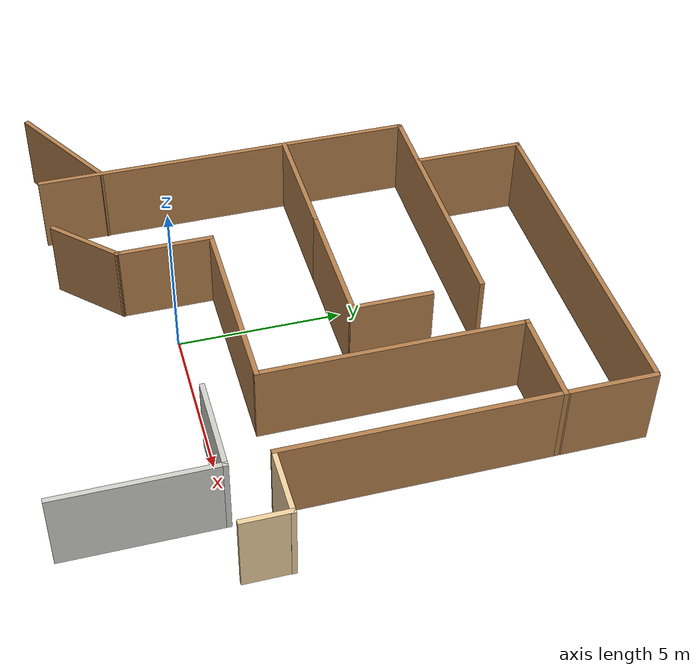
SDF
<sdf version="1.6">
 <model name="myHouse">
  <link name="Wall_10">
   <pose>-5.63978 0.790812 0 0 -0 1.5708</pose>
   <visual name="Wall_10_Visual">
    <pose>0 0 1.25 0 -0 0</pose>
    <geometry><box><size>8.02625 0.15 2.5</size></box></geometry>
    <material>
     <script><uri>file://media/materials/scripts/gazebo.material</uri><name>Gazebo/Wood</name></script>
     <ambient>1 1 1 1</ambient>
     <diffuse>1 1 1 1</diffuse>
     <specular>0.2 0.2 0.2 1</specular>
     <emissive>0 0 0 1</emissive>
    </material>
    <meta><layer>0</layer></meta>
   </visual>
   <collision name="Wall_10_Collision">
    <pose>0 0 1.25 0 -0 0</pose>
    <geometry><box><size>8.02625 0.15 2.5</size></box></geometry>
    <surface>
     <friction>
      <ode><mu>1</mu><mu2>1</mu2><fdir1>0 0 0</fdir1><slip1>0</slip1><slip2>0</slip2></ode>
      <torsional>
       <coefficient>1</coefficient>
       <patch_radius>0</patch_radius>
       <surface_radius>0</surface_radius>
       <use_patch_radius>1</use_patch_radius>
       <ode><slip>0</slip></ode>
      </torsional>
     </friction>
     <bounce><restitution_coefficient>0</restitution_coefficient><threshold>1e+06</threshold></bounce>
     <contact>
      <collide_without_contact>0</collide_without_contact>
      <collide_without_contact_bitmask>1</collide_without_contact_bitmask>
      <collide_bitmask>1</collide_bitmask>
      <ode>
       <soft_cfm>0</soft_cfm>
       <soft_erp>0.2</soft_erp>
       <kp>1e+13</kp>
       <kd>1</kd>
       <max_vel>0.01</max_vel>
       <min_depth>0</min_depth>
      </ode>
      <bullet>
       <split_impulse>1</split_impulse>
       <split_impulse_penetration_threshold>-0.01</split_impulse_penetration_threshold>
       <soft_cfm>0</soft_cfm>
       <soft_erp>0.2</soft_erp>
       <kp>1e+13</kp>
       <kd>1</kd>
      </bullet>
     </contact>
    </surface>
   </collision>
  </link>
  <link name="Wall_19">
   <pose>-7.29505 -2.18861 0 0 -0 0.523599</pose>
   <visual name="Wall_19_Visual">
    <pose>0 0 1.25 0 -0 0</pose>
    <geometry><box><size>4 0.15 2.5</size></box></geometry>
    <material>
     <script><uri>file://media/materials/scripts/gazebo.material</uri><name>Gazebo/Wood</name></script>
     <ambient>1 1 1 1</ambient>
     <diffuse>1 1 1 1</diffuse>
     <specular>0.2 0.2 0.2 1</specular>
     <emissive>0 0 0 1</emissive>
    </material>
    <meta><layer>0</layer></meta>
   </visual>
   <collision name="Wall_19_Collision">
    <pose>0 0 1.25 0 -0 0</pose>
    <geometry><box><size>4 0.15 2.5</size></box></geometry>
    <surface>
     <friction>
      <ode><mu>1</mu><mu2>1</mu2><fdir1>0 0 0</fdir1><slip1>0</slip1><slip2>0</slip2></ode>
      <torsional>
       <coefficient>1</coefficient>
       <patch_radius>0</patch_radius>
       <surface_radius>0</surface_radius>
       <use_patch_radius>1</use_patch_radius>
       <ode><slip>0</slip></ode>
      </torsional>
     </friction>
     <bounce><restitution_coefficient>0</restitution_coefficient><threshold>1e+06</threshold></bounce>
     <contact>
      <collide_without_contact>0</collide_without_contact>
      <collide_without_contact_bitmask>1</collide_without_contact_bitmask>
      <collide_bitmask>1</collide_bitmask>
      <ode>
       <soft_cfm>0</soft_cfm>
       <soft_erp>0.2</soft_erp>
       <kp>1e+13</kp>
       <kd>1</kd>
       <max_vel>0.01</max_vel>
       <min_depth>0</min_depth>
      </ode>
      <bullet>
       <split_impulse>1</split_impulse>
       <split_impulse_penetration_threshold>-0.01</split_impulse_penetration_threshold>
       <soft_cfm>0</soft_cfm>
       <soft_erp>0.2</soft_erp>
       <kp>1e+13</kp>
       <kd>1</kd>
      </bullet>
     </contact>
    </surface>
   </collision>
  </link>
  <link name="Wall_22">
   <pose>5.64675 -0.032335 0 0 -0 3.14159</pose>
   <visual name="Wall_22_Visual">
    <pose>0 0 1.25 0 -0 0</pose>
    <geometry><box><size>3 0.15 2.5</size></box></geometry>
    <material>
     <script><uri>file://media/materials/scripts/gazebo.material</uri><name>Gazebo/CeilingTiled</name></script>
     <ambient>0.921569 0.807843 0.615686 1</ambient>
     <diffuse>1 1 1 1</diffuse>
     <specular>0 0 0 1</specular>
     <emissive>0 0 0 1</emissive>
    </material>
    <meta><layer>0</layer></meta>
   </visual>
   <collision name="Wall_22_Collision">
    <pose>0 0 1.25 0 -0 0</pose>
    <geometry><box><size>3 0.15 2.5</size></box></geometry>
    <surface>
     <friction>
      <ode><mu>1</mu><mu2>1</mu2><fdir1>0 0 0</fdir1><slip1>0</slip1><slip2>0</slip2></ode>
      <torsional>
       <coefficient>1</coefficient>
       <patch_radius>0</patch_radius>
       <surface_radius>0</surface_radius>
       <use_patch_radius>1</use_patch_radius>
       <ode><slip>0</slip></ode>
      </torsional>
     </friction>
     <bounce><restitution_coefficient>0</restitution_coefficient><threshold>1e+06</threshold></bounce>
     <contact>
      <collide_without_contact>0</collide_without_contact>
      <collide_without_contact_bitmask>1</collide_without_contact_bitmask>
      <collide_bitmask>1</collide_bitmask>
      <ode>
       <soft_cfm>0</soft_cfm>
       <soft_erp>0.2</soft_erp>
       <kp>1e+13</kp>
       <kd>1</kd>
       <max_vel>0.01</max_vel>
       <min_depth>0</min_depth>
      </ode>
      <bullet>
       <split_impulse>1</split_impulse>
       <split_impulse_penetration_threshold>-0.01</split_impulse_penetration_threshold>
       <soft_cfm>0</soft_cfm>
       <soft_erp>0.2</soft_erp>
       <kp>1e+13</kp>
       <kd>1</kd>
      </bullet>
     </contact>
    </surface>
   </collision>
  </link>
  <link name="Wall_26">
   <pose>-2.5474 -2.20148 0 0 -0 0.785398</pose>
   <visual name="Wall_26_Visual">
    <pose>0 0 1.25 0 -0 0</pose>
    <geometry><box><size>2.5 0.15 2.5</size></box></geometry>
    <material>
     <script><uri>file://media/materials/scripts/gazebo.material</uri><name>Gazebo/Wood</name></script>
     <ambient>1 1 1 1</ambient>
     <diffuse>1 1 1 1</diffuse>
     <specular>0.2 0.2 0.2 1</specular>
     <emissive>0 0 0 1</emissive>
    </material>
    <meta><layer>0</layer></meta>
   </visual>
   <collision name="Wall_26_Collision">
    <pose>0 0 1.25 0 -0 0</pose>
    <geometry><box><size>2.5 0.15 2.5</size></box></geometry>
    <surface>
     <friction>
      <ode><mu>1</mu><mu2>1</mu2><fdir1>0 0 0</fdir1><slip1>0</slip1><slip2>0</slip2></ode>
      <torsional>
       <coefficient>1</coefficient>
       <patch_radius>0</patch_radius>
       <surface_radius>0</surface_radius>
       <use_patch_radius>1</use_patch_radius>
       <ode><slip>0</slip></ode>
      </torsional>
     </friction>
     <bounce><restitution_coefficient>0</restitution_coefficient><threshold>1e+06</threshold></bounce>
     <contact>
      <collide_without_contact>0</collide_without_contact>
      <collide_without_contact_bitmask>1</collide_without_contact_bitmask>
      <collide_bitmask>1</collide_bitmask>
      <ode>
       <soft_cfm>0</soft_cfm>
       <soft_erp>0.2</soft_erp>
       <kp>1e+13</kp>
       <kd>1</kd>
       <max_vel>0.01</max_vel>
       <min_depth>0</min_depth>
      </ode>
      <bullet>
       <split_impulse>1</split_impulse>
       <split_impulse_penetration_threshold>-0.01</split_impulse_penetration_threshold>
       <soft_cfm>0</soft_cfm>
       <soft_erp>0.2</soft_erp>
       <kp>1e+13</kp>
       <kd>1</kd>
      </bullet>
     </contact>
    </surface>
   </collision>
  </link>
  <link name="Wall_27">
   <pose>-1.71655 0.054366 0 0 -0 1.5708</pose>
   <visual name="Wall_27_Visual">
    <pose>0 0 1.25 0 -0 0</pose>
    <geometry><box><size>3 0.15 2.5</size></box></geometry>
    <material>
     <script><uri>file://media/materials/scripts/gazebo.material</uri><name>Gazebo/Wood</name></script>
     <ambient>1 1 1 1</ambient>
     <diffuse>1 1 1 1</diffuse>
     <specular>0.2 0.2 0.2 1</specular>
     <emissive>0 0 0 1</emissive>
    </material>
    <meta><layer>0</layer></meta>
   </visual>
   <collision name="Wall_27_Collision">
    <pose>0 0 1.25 0 -0 0</pose>
    <geometry><box><size>3 0.15 2.5</size></box></geometry>
    <surface>
     <friction>
      <ode><mu>1</mu><mu2>1</mu2><fdir1>0 0 0</fdir1><slip1>0</slip1><slip2>0</slip2></ode>
      <torsional>
       <coefficient>1</coefficient>
       <patch_radius>0</patch_radius>
       <surface_radius>0</surface_radius>
       <use_patch_radius>1</use_patch_radius>
       <ode><slip>0</slip></ode>
      </torsional>
     </friction>
     <bounce><restitution_coefficient>0</restitution_coefficient><threshold>1e+06</threshold></bounce>
     <contact>
      <collide_without_contact>0</collide_without_contact>
      <collide_without_contact_bitmask>1</collide_without_contact_bitmask>
      <collide_bitmask>1</collide_bitmask>
      <ode>
       <soft_cfm>0</soft_cfm>
       <soft_erp>0.2</soft_erp>
       <kp>1e+13</kp>
       <kd>1</kd>
       <max_vel>0.01</max_vel>
       <min_depth>0</min_depth>
      </ode>
      <bullet>
       <split_impulse>1</split_impulse>
       <split_impulse_penetration_threshold>-0.01</split_impulse_penetration_threshold>
       <soft_cfm>0</soft_cfm>
       <soft_erp>0.2</soft_erp>
       <kp>1e+13</kp>
       <kd>1</kd>
      </bullet>
     </contact>
    </surface>
   </collision>
  </link>
  <link name="Wall_28">
   <pose>1.20845 1.47937 0 0 -0 0</pose>
   <visual name="Wall_28_Visual">
    <pose>0 0 1.25 0 -0 0</pose>
    <geometry><box><size>6 0.15 2.5</size></box></geometry>
    <material>
     <script><uri>file://media/materials/scripts/gazebo.material</uri><name>Gazebo/Wood</name></script>
     <ambient>1 1 1 1</ambient>
     <diffuse>1 1 1 1</diffuse>
     <specular>0.2 0.2 0.2 1</specular>
     <emissive>0 0 0 1</emissive>
    </material>
    <meta><layer>0</layer></meta>
   </visual>
   <collision name="Wall_28_Collision">
    <pose>0 0 1.25 0 -0 0</pose>
    <geometry><box><size>6 0.15 2.5</size></box></geometry>
    <surface>
     <friction>
      <ode><mu>1</mu><mu2>1</mu2><fdir1>0 0 0</fdir1><slip1>0</slip1><slip2>0</slip2></ode>
      <torsional>
       <coefficient>1</coefficient>
       <patch_radius>0</patch_radius>
       <surface_radius>0</surface_radius>
       <use_patch_radius>1</use_patch_radius>
       <ode><slip>0</slip></ode>
      </torsional>
     </friction>
     <bounce><restitution_coefficient>0</restitution_coefficient><threshold>1e+06</threshold></bounce>
     <contact>
      <collide_without_contact>0</collide_without_contact>
      <collide_without_contact_bitmask>1</collide_without_contact_bitmask>
      <collide_bitmask>1</collide_bitmask>
      <ode>
       <soft_cfm>0</soft_cfm>
       <soft_erp>0.2</soft_erp>
       <kp>1e+13</kp>
       <kd>1</kd>
       <max_vel>0.01</max_vel>
       <min_depth>0</min_depth>
      </ode>
      <bullet>
       <split_impulse>1</split_impulse>
       <split_impulse_penetration_threshold>-0.01</split_impulse_penetration_threshold>
       <soft_cfm>0</soft_cfm>
       <soft_erp>0.2</soft_erp>
       <kp>1e+13</kp>
       <kd>1</kd>
      </bullet>
     </contact>
    </surface>
   </collision>
  </link>
  <link name="Wall_29">
   <pose>4.13345 5.40437 0 0 -0 1.5708</pose>
   <visual name="Wall_29_Visual">
    <pose>0 0 1.25 0 -0 0</pose>
    <geometry><box><size>8 0.15 2.5</size></box></geometry>
    <material>
     <script><uri>file://media/materials/scripts/gazebo.material</uri><name>Gazebo/Wood</name></script>
     <ambient>1 1 1 1</ambient>
     <diffuse>1 1 1 1</diffuse>
     <specular>0.2 0.2 0.2 1</specular>
     <emissive>0 0 0 1</emissive>
    </material>
    <meta><layer>0</layer></meta>
   </visual>
   <collision name="Wall_29_Collision">
    <pose>0 0 1.25 0 -0 0</pose>
    <geometry><box><size>8 0.15 2.5</size></box></geometry>
    <surface>
     <friction>
      <ode><mu>1</mu><mu2>1</mu2><fdir1>0 0 0</fdir1><slip1>0</slip1><slip2>0</slip2></ode>
      <torsional>
       <coefficient>1</coefficient>
       <patch_radius>0</patch_radius>
       <surface_radius>0</surface_radius>
       <use_patch_radius>1</use_patch_radius>
       <ode><slip>0</slip></ode>
      </torsional>
     </friction>
     <bounce><restitution_coefficient>0</restitution_coefficient><threshold>1e+06</threshold></bounce>
     <contact>
      <collide_without_contact>0</collide_without_contact>
      <collide_without_contact_bitmask>1</collide_without_contact_bitmask>
      <collide_bitmask>1</collide_bitmask>
      <ode>
       <soft_cfm>0</soft_cfm>
       <soft_erp>0.2</soft_erp>
       <kp>1e+13</kp>
       <kd>1</kd>
       <max_vel>0.01</max_vel>
       <min_depth>0</min_depth>
      </ode>
      <bullet>
       <split_impulse>1</split_impulse>
       <split_impulse_penetration_threshold>-0.01</split_impulse_penetration_threshold>
       <soft_cfm>0</soft_cfm>
       <soft_erp>0.2</soft_erp>
       <kp>1e+13</kp>
       <kd>1</kd>
      </bullet>
     </contact>
    </surface>
   </collision>
  </link>
  <link name="Wall_30">
   <pose>5.55565 9.3284 0 0 0 -0.000679</pose>
   <visual name="Wall_30_Visual">
    <pose>0 0 1.25 0 -0 0</pose>
    <geometry><box><size>2.99474 0.15 2.5</size></box></geometry>
    <material>
     <script><uri>file://media/materials/scripts/gazebo.material</uri><name>Gazebo/Wood</name></script>
     <ambient>1 1 1 1</ambient>
     <diffuse>1 1 1 1</diffuse>
     <specular>0.2 0.2 0.2 1</specular>
     <emissive>0 0 0 1</emissive>
    </material>
    <meta><layer>0</layer></meta>
   </visual>
   <collision name="Wall_30_Collision">
    <pose>0 0 1.25 0 -0 0</pose>
    <geometry><box><size>2.99474 0.15 2.5</size></box></geometry>
    <surface>
     <friction>
      <ode><mu>1</mu><mu2>1</mu2><fdir1>0 0 0</fdir1><slip1>0</slip1><slip2>0</slip2></ode>
      <torsional>
       <coefficient>1</coefficient>
       <patch_radius>0</patch_radius>
       <surface_radius>0</surface_radius>
       <use_patch_radius>1</use_patch_radius>
       <ode><slip>0</slip></ode>
      </torsional>
     </friction>
     <bounce><restitution_coefficient>0</restitution_coefficient><threshold>1e+06</threshold></bounce>
     <contact>
      <collide_without_contact>0</collide_without_contact>
      <collide_without_contact_bitmask>1</collide_without_contact_bitmask>
      <collide_bitmask>1</collide_bitmask>
      <ode>
       <soft_cfm>0</soft_cfm>
       <soft_erp>0.2</soft_erp>
       <kp>1e+13</kp>
       <kd>1</kd>
       <max_vel>0.01</max_vel>
       <min_depth>0</min_depth>
      </ode>
      <bullet>
       <split_impulse>1</split_impulse>
       <split_impulse_penetration_threshold>-0.01</split_impulse_penetration_threshold>
       <soft_cfm>0</soft_cfm>
       <soft_erp>0.2</soft_erp>
       <kp>1e+13</kp>
       <kd>1</kd>
      </bullet>
     </contact>
    </surface>
   </collision>
  </link>
  <link name="Wall_31">
   <pose>6.97785 5.3228 0 0 0 -1.5708</pose>
   <visual name="Wall_31_Visual">
    <pose>0 0 1.25 0 -0 0</pose>
    <geometry><box><size>8.25 0.15 2.5</size></box></geometry>
    <material>
     <script><uri>file://media/materials/scripts/gazebo.material</uri><name>Gazebo/Wood</name></script>
     <ambient>1 1 1 1</ambient>
     <diffuse>1 1 1 1</diffuse>
     <specular>0.2 0.2 0.2 1</specular>
     <emissive>0 0 0 1</emissive>
    </material>
    <meta><layer>0</layer></meta>
   </visual>
   <collision name="Wall_31_Collision">
    <pose>0 0 1.25 0 -0 0</pose>
    <geometry><box><size>8.25 0.15 2.5</size></box></geometry>
    <surface>
     <friction>
      <ode><mu>1</mu><mu2>1</mu2><fdir1>0 0 0</fdir1><slip1>0</slip1><slip2>0</slip2></ode>
      <torsional>
       <coefficient>1</coefficient>
       <patch_radius>0</patch_radius>
       <surface_radius>0</surface_radius>
       <use_patch_radius>1</use_patch_radius>
       <ode><slip>0</slip></ode>
      </torsional>
     </friction>
     <bounce><restitution_coefficient>0</restitution_coefficient><threshold>1e+06</threshold></bounce>
     <contact>
      <collide_without_contact>0</collide_without_contact>
      <collide_without_contact_bitmask>1</collide_without_contact_bitmask>
      <collide_bitmask>1</collide_bitmask>
      <ode>
       <soft_cfm>0</soft_cfm>
       <soft_erp>0.2</soft_erp>
       <kp>1e+13</kp>
       <kd>1</kd>
       <max_vel>0.01</max_vel>
       <min_depth>0</min_depth>
      </ode>
      <bullet>
       <split_impulse>1</split_impulse>
       <split_impulse_penetration_threshold>-0.01</split_impulse_penetration_threshold>
       <soft_cfm>0</soft_cfm>
       <soft_erp>0.2</soft_erp>
       <kp>1e+13</kp>
       <kd>1</kd>
      </bullet>
     </contact>
    </surface>
   </collision>
  </link>
  <link name="Wall_37">
   <pose>-3.71478 4.72896 0 0 -0 0.000116</pose>
   <visual name="Wall_37_Visual">
    <pose>0 0 1.25 0 -0 0</pose>
    <geometry><box><size>4 0.15 2.5</size></box></geometry>
    <material>
     <script><uri>file://media/materials/scripts/gazebo.material</uri><name>Gazebo/Wood</name></script>
     <ambient>1 1 1 1</ambient>
     <diffuse>1 1 1 1</diffuse>
     <specular>0.2 0.2 0.2 1</specular>
     <emissive>0 0 0 1</emissive>
    </material>
    <meta><layer>0</layer></meta>
   </visual>
   <collision name="Wall_37_Collision">
    <pose>0 0 1.25 0 -0 0</pose>
    <geometry><box><size>4 0.15 2.5</size></box></geometry>
    <surface>
     <friction>
      <ode><mu>1</mu><mu2>1</mu2><fdir1>0 0 0</fdir1><slip1>0</slip1><slip2>0</slip2></ode>
      <torsional>
       <coefficient>1</coefficient>
       <patch_radius>0</patch_radius>
       <surface_radius>0</surface_radius>
       <use_patch_radius>1</use_patch_radius>
       <ode><slip>0</slip></ode>
      </torsional>
     </friction>
     <bounce><restitution_coefficient>0</restitution_coefficient><threshold>1e+06</threshold></bounce>
     <contact>
      <collide_without_contact>0</collide_without_contact>
      <collide_without_contact_bitmask>1</collide_without_contact_bitmask>
      <collide_bitmask>1</collide_bitmask>
      <ode>
       <soft_cfm>0</soft_cfm>
       <soft_erp>0.2</soft_erp>
       <kp>1e+13</kp>
       <kd>1</kd>
       <max_vel>0.01</max_vel>
       <min_depth>0</min_depth>
      </ode>
      <bullet>
       <split_impulse>1</split_impulse>
       <split_impulse_penetration_threshold>-0.01</split_impulse_penetration_threshold>
       <soft_cfm>0</soft_cfm>
       <soft_erp>0.2</soft_erp>
       <kp>1e+13</kp>
       <kd>1</kd>
      </bullet>
     </contact>
    </surface>
   </collision>
  </link>
  <link name="Wall_38">
   <pose>0.260223 4.72919 0 0 -0 0</pose>
   <visual name="Wall_38_Visual">
    <pose>0 0 1.25 0 -0 0</pose>
    <geometry><box><size>4.25 0.15 2.5</size></box></geometry>
    <material>
     <script><uri>file://media/materials/scripts/gazebo.material</uri><name>Gazebo/Wood</name></script>
     <ambient>1 1 1 1</ambient>
     <diffuse>1 1 1 1</diffuse>
     <specular>0.2 0.2 0.2 1</specular>
     <emissive>0 0 0 1</emissive>
    </material>
    <meta><layer>0</layer></meta>
   </visual>
   <collision name="Wall_38_Collision">
    <pose>0 0 1.25 0 -0 0</pose>
    <geometry><box><size>4.25 0.15 2.5</size></box></geometry>
    <surface>
     <friction>
      <ode><mu>1</mu><mu2>1</mu2><fdir1>0 0 0</fdir1><slip1>0</slip1><slip2>0</slip2></ode>
      <torsional>
       <coefficient>1</coefficient>
       <patch_radius>0</patch_radius>
       <surface_radius>0</surface_radius>
       <use_patch_radius>1</use_patch_radius>
       <ode><slip>0</slip></ode>
      </torsional>
     </friction>
     <bounce><restitution_coefficient>0</restitution_coefficient><threshold>1e+06</threshold></bounce>
     <contact>
      <collide_without_contact>0</collide_without_contact>
      <collide_without_contact_bitmask>1</collide_without_contact_bitmask>
      <collide_bitmask>1</collide_bitmask>
      <ode>
       <soft_cfm>0</soft_cfm>
       <soft_erp>0.2</soft_erp>
       <kp>1e+13</kp>
       <kd>1</kd>
       <max_vel>0.01</max_vel>
       <min_depth>0</min_depth>
      </ode>
      <bullet>
       <split_impulse>1</split_impulse>
       <split_impulse_penetration_threshold>-0.01</split_impulse_penetration_threshold>
       <soft_cfm>0</soft_cfm>
       <soft_erp>0.2</soft_erp>
       <kp>1e+13</kp>
       <kd>1</kd>
      </bullet>
     </contact>
    </surface>
   </collision>
  </link>
  <link name="Wall_39">
   <pose>2.31022 5.90419 0 0 -0 1.5708</pose>
   <visual name="Wall_39_Visual">
    <pose>0 0 1.25 0 -0 0</pose>
    <geometry><box><size>2.5 0.15 2.5</size></box></geometry>
    <material>
     <script><uri>file://media/materials/scripts/gazebo.material</uri><name>Gazebo/Wood</name></script>
     <ambient>1 1 1 1</ambient>
     <diffuse>1 1 1 1</diffuse>
     <specular>0.2 0.2 0.2 1</specular>
     <emissive>0 0 0 1</emissive>
    </material>
    <meta><layer>0</layer></meta>
   </visual>
   <collision name="Wall_39_Collision">
    <pose>0 0 1.25 0 -0 0</pose>
    <geometry><box><size>2.5 0.15 2.5</size></box></geometry>
    <surface>
     <friction>
      <ode><mu>1</mu><mu2>1</mu2><fdir1>0 0 0</fdir1><slip1>0</slip1><slip2>0</slip2></ode>
      <torsional>
       <coefficient>1</coefficient>
       <patch_radius>0</patch_radius>
       <surface_radius>0</surface_radius>
       <use_patch_radius>1</use_patch_radius>
       <ode><slip>0</slip></ode>
      </torsional>
     </friction>
     <bounce><restitution_coefficient>0</restitution_coefficient><threshold>1e+06</threshold></bounce>
     <contact>
      <collide_without_contact>0</collide_without_contact>
      <collide_without_contact_bitmask>1</collide_without_contact_bitmask>
      <collide_bitmask>1</collide_bitmask>
      <ode>
       <soft_cfm>0</soft_cfm>
       <soft_erp>0.2</soft_erp>
       <kp>1e+13</kp>
       <kd>1</kd>
       <max_vel>0.01</max_vel>
       <min_depth>0</min_depth>
      </ode>
      <bullet>
       <split_impulse>1</split_impulse>
       <split_impulse_penetration_threshold>-0.01</split_impulse_penetration_threshold>
       <soft_cfm>0</soft_cfm>
       <soft_erp>0.2</soft_erp>
       <kp>1e+13</kp>
       <kd>1</kd>
      </bullet>
     </contact>
    </surface>
   </collision>
  </link>
  <link name="Wall_4">
   <pose>7.07175 -2.33234 0 0 -0 1.5708</pose>
   <visual name="Wall_4_Visual">
    <pose>0 0 1.25 0 -0 0</pose>
    <geometry><box><size>4.75 0.15 2.5</size></box></geometry>
    <material>
     <script><uri>file://media/materials/scripts/gazebo.material</uri><name>Gazebo/CeilingTiled</name></script>
     <ambient>0.921569 0.807843 0.615686 1</ambient>
     <diffuse>1 1 1 1</diffuse>
     <specular>0 0 0 1</specular>
     <emissive>0 0 0 1</emissive>
    </material>
    <meta><layer>0</layer></meta>
   </visual>
   <collision name="Wall_4_Collision">
    <pose>0 0 1.25 0 -0 0</pose>
    <geometry><box><size>4.75 0.15 2.5</size></box></geometry>
    <surface>
     <friction>
      <ode><mu>1</mu><mu2>1</mu2><fdir1>0 0 0</fdir1><slip1>0</slip1><slip2>0</slip2></ode>
      <torsional>
       <coefficient>1</coefficient>
       <patch_radius>0</patch_radius>
       <surface_radius>0</surface_radius>
       <use_patch_radius>1</use_patch_radius>
       <ode><slip>0</slip></ode>
      </torsional>
     </friction>
     <bounce><restitution_coefficient>0</restitution_coefficient><threshold>1e+06</threshold></bounce>
     <contact>
      <collide_without_contact>0</collide_without_contact>
      <collide_without_contact_bitmask>1</collide_without_contact_bitmask>
      <collide_bitmask>1</collide_bitmask>
      <ode>
       <soft_cfm>0</soft_cfm>
       <soft_erp>0.2</soft_erp>
       <kp>1e+13</kp>
       <kd>1</kd>
       <max_vel>0.01</max_vel>
       <min_depth>0</min_depth>
      </ode>
      <bullet>
       <split_impulse>1</split_impulse>
       <split_impulse_penetration_threshold>-0.01</split_impulse_penetration_threshold>
       <soft_cfm>0</soft_cfm>
       <soft_erp>0.2</soft_erp>
       <kp>1e+13</kp>
       <kd>1</kd>
      </bullet>
     </contact>
    </surface>
   </collision>
  </link>
  <link name="Wall_41">
   <pose>-1.66015 8.63454 0 0 0 -3.14154</pose>
   <visual name="Wall_41_Visual">
    <pose>0 0 1.25 0 -0 0</pose>
    <geometry><box><size>8 0.15 2.5</size></box></geometry>
    <material>
     <script><uri>file://media/materials/scripts/gazebo.material</uri><name>Gazebo/Wood</name></script>
     <ambient>0.921569 0.807843 0.615686 1</ambient>
     <diffuse>1 1 1 1</diffuse>
     <specular>0.2 0.2 0.2 1</specular>
     <emissive>0 0 0 1</emissive>
    </material>
    <meta><layer>0</layer></meta>
   </visual>
   <collision name="Wall_41_Collision">
    <pose>0 0 1.25 0 -0 0</pose>
    <geometry><box><size>8 0.15 2.5</size></box></geometry>
    <surface>
     <friction>
      <ode><mu>1</mu><mu2>1</mu2><fdir1>0 0 0</fdir1><slip1>0</slip1><slip2>0</slip2></ode>
      <torsional>
       <coefficient>1</coefficient>
       <patch_radius>0</patch_radius>
       <surface_radius>0</surface_radius>
       <use_patch_radius>1</use_patch_radius>
       <ode><slip>0</slip></ode>
      </torsional>
     </friction>
     <bounce><restitution_coefficient>0</restitution_coefficient><threshold>1e+06</threshold></bounce>
     <contact>
      <collide_without_contact>0</collide_without_contact>
      <collide_without_contact_bitmask>1</collide_without_contact_bitmask>
      <collide_bitmask>1</collide_bitmask>
      <ode>
       <soft_cfm>0</soft_cfm>
       <soft_erp>0.2</soft_erp>
       <kp>1e+13</kp>
       <kd>1</kd>
       <max_vel>0.01</max_vel>
       <min_depth>0</min_depth>
      </ode>
      <bullet>
       <split_impulse>1</split_impulse>
       <split_impulse_penetration_threshold>-0.01</split_impulse_penetration_threshold>
       <soft_cfm>0</soft_cfm>
       <soft_erp>0.2</soft_erp>
       <kp>1e+13</kp>
       <kd>1</kd>
      </bullet>
     </contact>
    </surface>
   </collision>
  </link>
  <link name="Wall_44">
   <pose>-5.63978 6.65374 0 0 -0 1.5708</pose>
   <visual name="Wall_44_Visual">
    <pose>0 0 1.25 0 -0 0</pose>
    <geometry><box><size>4 0.15 2.5</size></box></geometry>
    <material>
     <script><uri>file://media/materials/scripts/gazebo.material</uri><name>Gazebo/Wood</name></script>
     <ambient>1 1 1 1</ambient>
     <diffuse>1 1 1 1</diffuse>
     <specular>0.2 0.2 0.2 1</specular>
     <emissive>0 0 0 1</emissive>
    </material>
    <meta><layer>0</layer></meta>
   </visual>
   <collision name="Wall_44_Collision">
    <pose>0 0 1.25 0 -0 0</pose>
    <geometry><box><size>4 0.15 2.5</size></box></geometry>
    <surface>
     <friction>
      <ode><mu>1</mu><mu2>1</mu2><fdir1>0 0 0</fdir1><slip1>0</slip1><slip2>0</slip2></ode>
      <torsional>
       <coefficient>1</coefficient>
       <patch_radius>0</patch_radius>
       <surface_radius>0</surface_radius>
       <use_patch_radius>1</use_patch_radius>
       <ode><slip>0</slip></ode>
      </torsional>
     </friction>
     <bounce><restitution_coefficient>0</restitution_coefficient><threshold>1e+06</threshold></bounce>
     <contact>
      <collide_without_contact>0</collide_without_contact>
      <collide_without_contact_bitmask>1</collide_without_contact_bitmask>
      <collide_bitmask>1</collide_bitmask>
      <ode>
       <soft_cfm>0</soft_cfm>
       <soft_erp>0.2</soft_erp>
       <kp>1e+13</kp>
       <kd>1</kd>
       <max_vel>0.01</max_vel>
       <min_depth>0</min_depth>
      </ode>
      <bullet>
       <split_impulse>1</split_impulse>
       <split_impulse_penetration_threshold>-0.01</split_impulse_penetration_threshold>
       <soft_cfm>0</soft_cfm>
       <soft_erp>0.2</soft_erp>
       <kp>1e+13</kp>
       <kd>1</kd>
      </bullet>
     </contact>
    </surface>
   </collision>
  </link>
  <link name="Wall_46">
   <pose>-3.70991 10.3295 0 0 -0 1.5708</pose>
   <visual name="Wall_46_Visual">
    <pose>0 0 1.25 0 -0 0</pose>
    <geometry><box><size>3.5 0.15 2.5</size></box></geometry>
    <material>
     <script><uri>file://media/materials/scripts/gazebo.material</uri><name>Gazebo/Wood</name></script>
     <ambient>1 1 1 1</ambient>
     <diffuse>1 1 1 1</diffuse>
     <specular>0.2 0.2 0.2 1</specular>
     <emissive>0 0 0 1</emissive>
    </material>
    <meta><layer>0</layer></meta>
   </visual>
   <collision name="Wall_46_Collision">
    <pose>0 0 1.25 0 -0 0</pose>
    <geometry><box><size>3.5 0.15 2.5</size></box></geometry>
    <surface>
     <friction>
      <ode><mu>1</mu><mu2>1</mu2><fdir1>0 0 0</fdir1><slip1>0</slip1><slip2>0</slip2></ode>
      <torsional>
       <coefficient>1</coefficient>
       <patch_radius>0</patch_radius>
       <surface_radius>0</surface_radius>
       <use_patch_radius>1</use_patch_radius>
       <ode><slip>0</slip></ode>
      </torsional>
     </friction>
     <bounce><restitution_coefficient>0</restitution_coefficient><threshold>1e+06</threshold></bounce>
     <contact>
      <collide_without_contact>0</collide_without_contact>
      <collide_without_contact_bitmask>1</collide_without_contact_bitmask>
      <collide_bitmask>1</collide_bitmask>
      <ode>
       <soft_cfm>0</soft_cfm>
       <soft_erp>0.2</soft_erp>
       <kp>1e+13</kp>
       <kd>1</kd>
       <max_vel>0.01</max_vel>
       <min_depth>0</min_depth>
      </ode>
      <bullet>
       <split_impulse>1</split_impulse>
       <split_impulse_penetration_threshold>-0.01</split_impulse_penetration_threshold>
       <soft_cfm>0</soft_cfm>
       <soft_erp>0.2</soft_erp>
       <kp>1e+13</kp>
       <kd>1</kd>
      </bullet>
     </contact>
    </surface>
   </collision>
  </link>
  <link name="Wall_47">
   <pose>1.59009 12.0045 0 0 -0 0</pose>
   <visual name="Wall_47_Visual">
    <pose>0 0 1.25 0 -0 0</pose>
    <geometry><box><size>10.75 0.15 2.5</size></box></geometry>
    <material>
     <script><uri>file://media/materials/scripts/gazebo.material</uri><name>Gazebo/Wood</name></script>
     <ambient>1 1 1 1</ambient>
     <diffuse>1 1 1 1</diffuse>
     <specular>0.2 0.2 0.2 1</specular>
     <emissive>0 0 0 1</emissive>
    </material>
    <meta><layer>0</layer></meta>
   </visual>
   <collision name="Wall_47_Collision">
    <pose>0 0 1.25 0 -0 0</pose>
    <geometry><box><size>10.75 0.15 2.5</size></box></geometry>
    <surface>
     <friction>
      <ode><mu>1</mu><mu2>1</mu2><fdir1>0 0 0</fdir1><slip1>0</slip1><slip2>0</slip2></ode>
      <torsional>
       <coefficient>1</coefficient>
       <patch_radius>0</patch_radius>
       <surface_radius>0</surface_radius>
       <use_patch_radius>1</use_patch_radius>
       <ode><slip>0</slip></ode>
      </torsional>
     </friction>
     <bounce><restitution_coefficient>0</restitution_coefficient><threshold>1e+06</threshold></bounce>
     <contact>
      <collide_without_contact>0</collide_without_contact>
      <collide_without_contact_bitmask>1</collide_without_contact_bitmask>
      <collide_bitmask>1</collide_bitmask>
      <ode>
       <soft_cfm>0</soft_cfm>
       <soft_erp>0.2</soft_erp>
       <kp>1e+13</kp>
       <kd>1</kd>
       <max_vel>0.01</max_vel>
       <min_depth>0</min_depth>
      </ode>
      <bullet>
       <split_impulse>1</split_impulse>
       <split_impulse_penetration_threshold>-0.01</split_impulse_penetration_threshold>
       <soft_cfm>0</soft_cfm>
       <soft_erp>0.2</soft_erp>
       <kp>1e+13</kp>
       <kd>1</kd>
      </bullet>
     </contact>
    </surface>
   </collision>
  </link>
  <link name="Wall_49">
   <pose>6.97785 10.6728 0 0 -0 1.5708</pose>
   <visual name="Wall_49_Visual">
    <pose>0 0 1.25 0 -0 0</pose>
    <geometry><box><size>2.75 0.15 2.5</size></box></geometry>
    <material>
     <script><uri>file://media/materials/scripts/gazebo.material</uri><name>Gazebo/Wood</name></script>
     <ambient>1 1 1 1</ambient>
     <diffuse>1 1 1 1</diffuse>
     <specular>0.2 0.2 0.2 1</specular>
     <emissive>0 0 0 1</emissive>
    </material>
    <meta><layer>0</layer></meta>
   </visual>
   <collision name="Wall_49_Collision">
    <pose>0 0 1.25 0 -0 0</pose>
    <geometry><box><size>2.75 0.15 2.5</size></box></geometry>
    <surface>
     <friction>
      <ode><mu>1</mu><mu2>1</mu2><fdir1>0 0 0</fdir1><slip1>0</slip1><slip2>0</slip2></ode>
      <torsional>
       <coefficient>1</coefficient>
       <patch_radius>0</patch_radius>
       <surface_radius>0</surface_radius>
       <use_patch_radius>1</use_patch_radius>
       <ode><slip>0</slip></ode>
      </torsional>
     </friction>
     <bounce><restitution_coefficient>0</restitution_coefficient><threshold>1e+06</threshold></bounce>
     <contact>
      <collide_without_contact>0</collide_without_contact>
      <collide_without_contact_bitmask>1</collide_without_contact_bitmask>
      <collide_bitmask>1</collide_bitmask>
      <ode>
       <soft_cfm>0</soft_cfm>
       <soft_erp>0.2</soft_erp>
       <kp>1e+13</kp>
       <kd>1</kd>
       <max_vel>0.01</max_vel>
       <min_depth>0</min_depth>
      </ode>
      <bullet>
       <split_impulse>1</split_impulse>
       <split_impulse_penetration_threshold>-0.01</split_impulse_penetration_threshold>
       <soft_cfm>0</soft_cfm>
       <soft_erp>0.2</soft_erp>
       <kp>1e+13</kp>
       <kd>1</kd>
      </bullet>
     </contact>
    </surface>
   </collision>
  </link>
  <link name="Wall_51">
   <pose>7.98368 1.27165 0 0 0 -0.001144</pose>
   <visual name="Wall_51_Visual">
    <pose>0 0 1.25 0 -0 0</pose>
    <geometry><box><size>2.16166 0.15 2.5</size></box></geometry>
    <material>
     <script><uri>file://media/materials/scripts/gazebo.material</uri><name>Gazebo/Grey</name></script>
     <ambient>0.921569 0.807843 0.615686 1</ambient>
     <diffuse>0.7 0.7 0.7 1</diffuse>
     <specular>0.01 0.01 0.01 1</specular>
     <emissive>0 0 0 1</emissive>
    </material>
    <meta><layer>0</layer></meta>
   </visual>
   <collision name="Wall_51_Collision">
    <pose>0 0 1.25 0 -0 0</pose>
    <geometry><box><size>2.16166 0.15 2.5</size></box></geometry>
    <surface>
     <friction>
      <ode><mu>1</mu><mu2>1</mu2><fdir1>0 0 0</fdir1><slip1>0</slip1><slip2>0</slip2></ode>
      <torsional>
       <coefficient>1</coefficient>
       <patch_radius>0</patch_radius>
       <surface_radius>0</surface_radius>
       <use_patch_radius>1</use_patch_radius>
       <ode><slip>0</slip></ode>
      </torsional>
     </friction>
     <bounce><restitution_coefficient>0</restitution_coefficient><threshold>1e+06</threshold></bounce>
     <contact>
      <collide_without_contact>0</collide_without_contact>
      <collide_without_contact_bitmask>1</collide_without_contact_bitmask>
      <collide_bitmask>1</collide_bitmask>
      <ode>
       <soft_cfm>0</soft_cfm>
       <soft_erp>0.2</soft_erp>
       <kp>1e+13</kp>
       <kd>1</kd>
       <max_vel>0.01</max_vel>
       <min_depth>0</min_depth>
      </ode>
      <bullet>
       <split_impulse>1</split_impulse>
       <split_impulse_penetration_threshold>-0.01</split_impulse_penetration_threshold>
       <soft_cfm>0</soft_cfm>
       <soft_erp>0.2</soft_erp>
       <kp>1e+13</kp>
       <kd>1</kd>
      </bullet>
     </contact>
    </surface>
   </collision>
  </link>
  <link name="Wall_52">
   <pose>8.97976 0.595501 0 0 0 -1.5708</pose>
   <visual name="Wall_52_Visual">
    <pose>0 0 1.25 0 -0 0</pose>
    <geometry><box><size>1.5 0.15 2.5</size></box></geometry>
    <material>
     <script><uri>file://media/materials/scripts/gazebo.material</uri><name>Gazebo/Grey</name></script>
     <ambient>0.921569 0.807843 0.615686 1</ambient>
     <diffuse>0.7 0.7 0.7 1</diffuse>
     <specular>0.01 0.01 0.01 1</specular>
     <emissive>0 0 0 1</emissive>
    </material>
    <meta><layer>0</layer></meta>
   </visual>
   <collision name="Wall_52_Collision">
    <pose>0 0 1.25 0 -0 0</pose>
    <geometry><box><size>1.5 0.15 2.5</size></box></geometry>
    <surface>
     <friction>
      <ode><mu>1</mu><mu2>1</mu2><fdir1>0 0 0</fdir1><slip1>0</slip1><slip2>0</slip2></ode>
      <torsional>
       <coefficient>1</coefficient>
       <patch_radius>0</patch_radius>
       <surface_radius>0</surface_radius>
       <use_patch_radius>1</use_patch_radius>
       <ode><slip>0</slip></ode>
      </torsional>
     </friction>
     <bounce><restitution_coefficient>0</restitution_coefficient><threshold>1e+06</threshold></bounce>
     <contact>
      <collide_without_contact>0</collide_without_contact>
      <collide_without_contact_bitmask>1</collide_without_contact_bitmask>
      <collide_bitmask>1</collide_bitmask>
      <ode>
       <soft_cfm>0</soft_cfm>
       <soft_erp>0.2</soft_erp>
       <kp>1e+13</kp>
       <kd>1</kd>
       <max_vel>0.01</max_vel>
       <min_depth>0</min_depth>
      </ode>
      <bullet>
       <split_impulse>1</split_impulse>
       <split_impulse_penetration_threshold>-0.01</split_impulse_penetration_threshold>
       <soft_cfm>0</soft_cfm>
       <soft_erp>0.2</soft_erp>
       <kp>1e+13</kp>
       <kd>1</kd>
      </bullet>
     </contact>
    </surface>
   </collision>
  </link>
  <static>1</static>
 </model>
</sdf>
